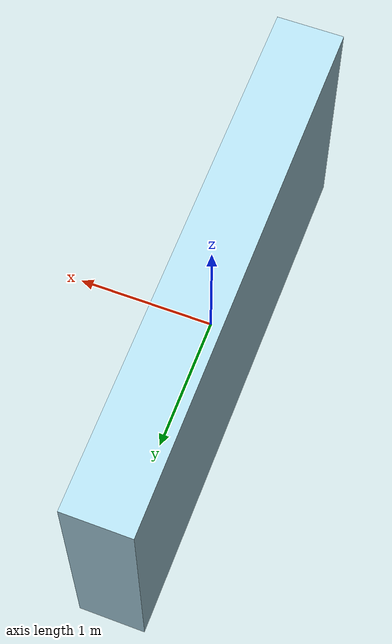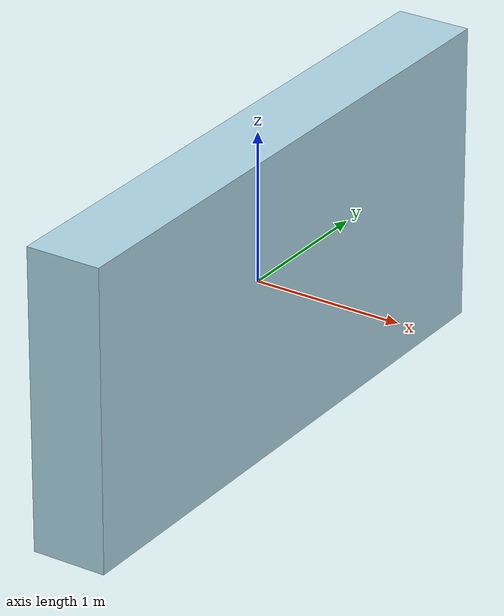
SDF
<?xml version="1.0" ?>
<sdf version="1.7">

    <model name='wall'>
        <static>true</static>
        <pose>0 0 0 0 0 0</pose><!--pose relative to the world-->
        <link name='box'>
            <visual name='visual'>
                <geometry>
                    <box>
                        <size>0.5 4.0 2.0</size>
                    </box>
                </geometry>
                <!--let's add color to our link-->
                <material>
                    <ambient>0.68 0.84 0.90 1</ambient>
                    <diffuse>0.68 0.84 0.90 1</diffuse>
                    <specular>0.68 0.84 0.90 1</specular>
                </material>
            </visual>
            <collision name='collision'>
                <geometry>
                    <box>
                        <size>0.5 4.0 2.0</size>
                    </box>
                </geometry>
            </collision>
        </link>
    </model>

</sdf>
